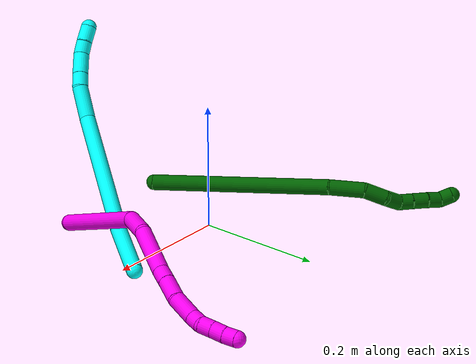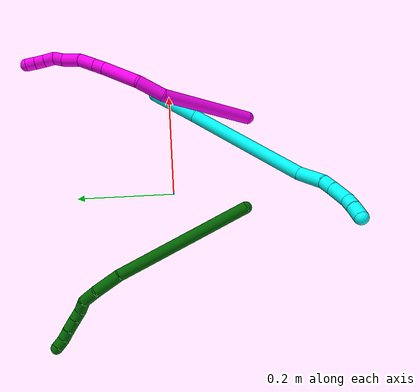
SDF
<sdf version="1.7">
 <world name="default">
  <model name="photoneo_s_sensor">
   <static>1</static>
   <pose>0 0 2 1.57079 1.57079 3.14159</pose>
   <link name="link">
    <inertial><mass>0.1</mass></inertial>
    <sensor name="sensor" type="depth">
     <update_rate>30</update_rate>
     <camera>
      <horizontal_fov>1.22</horizontal_fov>
      <image><width>1920</width><height>1200</height><format>B8G8R8</format></image>
      <clip><near>0.1</near><far>4</far></clip>
      <depth_camera><output>points</output></depth_camera>
     </camera>
     <plugin name="camera_plugin" filename="libgazebo_ros_depth_camera.so">
      <baseline>0.2</baseline>
      <alwaysOn>1</alwaysOn>
      <updateRate>0.0</updateRate>
      <cameraName>camera_ir</cameraName>
      <imageTopicName>/camera/color/image_raw</imageTopicName>
      <cameraInfoTopicName>/camera/color/camera_info</cameraInfoTopicName>
      <depthImageTopicName>/camera/depth/image_raw</depthImageTopicName>
      <depthImageCameraInfoTopicName>/camera/depth/camera_info</depthImageCameraInfoTopicName>
      <pointCloudTopicName>/camera/depth/points</pointCloudTopicName>
      <frameName>fr_optical</frameName>
      <pointCloudCutoff>0.1</pointCloudCutoff>
      <pointCloudCutoffMax>2.0</pointCloudCutoffMax>
      <distortionK1>0</distortionK1>
      <distortionK2>0</distortionK2>
      <distortionK3>0</distortionK3>
      <distortionT1>0</distortionT1>
      <distortionT2>0</distortionT2>
      <CxPrime>0</CxPrime>
      <Cx>0</Cx>
      <Cy>0</Cy>
      <focalLength>0</focalLength>
      <hackBaseline>0</hackBaseline>
     </plugin>
    </sensor>
   </link>
  </model>
  <model name="bin">
   <static>1</static>
   <link name="bottom">
    <collision name="collision-bottom">
     <pose>0 0 -0.01 0 -0 0</pose>
     <geometry><box><size>0.8 0.6 0.02</size></box></geometry>
     <surface>
      <friction><ode><mu>100</mu><mu2>100</mu2></ode></friction>
      <contact><collide_bitmask>65535</collide_bitmask></contact>
     </surface>
    </collision>
   </link>
   <link name="west_wall">
    <collision name="collision-west_wall">
     <pose>-0.41 0 0.1 0 -0 0</pose>
     <geometry><box><size>0.02 0.6 0.2</size></box></geometry>
     <surface>
      <friction><ode><mu>100</mu><mu2>100</mu2></ode></friction>
      <contact><collide_bitmask>65535</collide_bitmask></contact>
     </surface>
    </collision>
   </link>
   <link name="east_wall">
    <collision name="collision-east_wall">
     <pose>0.41 0 0.1 0 -0 0</pose>
     <geometry><box><size>0.02 0.6 0.2</size></box></geometry>
     <surface>
      <friction><ode><mu>100</mu><mu2>100</mu2></ode></friction>
      <contact><collide_bitmask>65535</collide_bitmask></contact>
     </surface>
    </collision>
   </link>
   <link name="south_wall">
    <collision name="collision-south_wall">
     <pose>0 -0.31 0.1 0 -0 0</pose>
     <geometry><box><size>0.8 0.02 0.2</size></box></geometry>
     <surface>
      <friction><ode><mu>100</mu><mu2>100</mu2></ode></friction>
      <contact><collide_bitmask>65535</collide_bitmask></contact>
     </surface>
    </collision>
   </link>
   <link name="north_wall">
    <collision name="collision-north_wall">
     <pose>0 0.31 0.1 0 -0 0</pose>
     <geometry><box><size>0.8 0.02 0.2</size></box></geometry>
     <surface>
      <friction><ode><mu>100</mu><mu2>100</mu2></ode></friction>
      <contact><collide_bitmask>65535</collide_bitmask></contact>
     </surface>
    </collision>
   </link>
  </model>
  <model name="3">
   <static>0</static>
   <link name="3">
    <collision name="collision-cylinder-e_1_1_4">
     <pose>-0.004735 -0.011561 0.046551 0.24342 -0.098401 -0.012045</pose>
     <geometry><cylinder><radius>0.0125</radius><length>0.096397</length></cylinder></geometry>
     <surface>
      <friction><ode><mu>1.16</mu><mu2>1.16</mu2><slip1>0</slip1><slip2>0</slip2></ode></friction>
      <contact><ode><kp>1e+06</kp><kd>1</kd><max_vel>0</max_vel><min_depth>0.001</min_depth></ode></contact>
     </surface>
    </collision>
    <visual name="visual-cylinder-e_1_1_4">
     <pose>-0.004735 -0.011561 0.046551 0.24342 -0.098401 -0.012045</pose>
     <geometry><cylinder><radius>0.0125</radius><length>0.096397</length></cylinder></geometry>
     <material><ambient>0.003922 1 0.996078 1</ambient></material>
    </visual>
    <collision name="collision-cylinder-e_2_4_5">
     <pose>-0.025129 -0.06675 0.204724 0.372602 -0.129925 -0.024522</pose>
     <geometry><cylinder><radius>0.0125</radius><length>0.241728</length></cylinder></geometry>
     <surface>
      <friction><ode><mu>1.16</mu><mu2>1.16</mu2><slip1>0</slip1><slip2>0</slip2></ode></friction>
      <contact><ode><kp>1e+06</kp><kd>1</kd><max_vel>0</max_vel><min_depth>0.001</min_depth></ode></contact>
     </surface>
    </collision>
    <visual name="visual-cylinder-e_2_4_5">
     <pose>-0.025129 -0.06675 0.204724 0.372602 -0.129925 -0.024522</pose>
     <geometry><cylinder><radius>0.0125</radius><length>0.241728</length></cylinder></geometry>
     <material><ambient>0.003922 1 0.996078 1</ambient></material>
    </visual>
    <collision name="collision-cylinder-e_3_5_6">
     <pose>-0.05142 -0.128185 0.33472 0.769722 -0.393794 -0.161254</pose>
     <geometry><cylinder><radius>0.0125</radius><length>0.055415</length></cylinder></geometry>
     <surface>
      <friction><ode><mu>1.16</mu><mu2>1.16</mu2><slip1>0</slip1><slip2>0</slip2></ode></friction>
      <contact><ode><kp>1e+06</kp><kd>1</kd><max_vel>0</max_vel><min_depth>0.001</min_depth></ode></contact>
     </surface>
    </collision>
    <visual name="visual-cylinder-e_3_5_6">
     <pose>-0.05142 -0.128185 0.33472 0.769722 -0.393794 -0.161254</pose>
     <geometry><cylinder><radius>0.0125</radius><length>0.055415</length></cylinder></geometry>
     <material><ambient>0.003922 1 0.996078 1</ambient></material>
    </visual>
    <collision name="collision-cylinder-e_4_6_7">
     <pose>-0.063562 -0.15397 0.36103 0.788103 -0.133509 -0.055581</pose>
     <geometry><cylinder><radius>0.0125</radius><length>0.022708</length></cylinder></geometry>
     <surface>
      <friction><ode><mu>1.16</mu><mu2>1.16</mu2><slip1>0</slip1><slip2>0</slip2></ode></friction>
      <contact><ode><kp>1e+06</kp><kd>1</kd><max_vel>0</max_vel><min_depth>0.001</min_depth></ode></contact>
     </surface>
    </collision>
    <visual name="visual-cylinder-e_4_6_7">
     <pose>-0.063562 -0.15397 0.36103 0.788103 -0.133509 -0.055581</pose>
     <geometry><cylinder><radius>0.0125</radius><length>0.022708</length></cylinder></geometry>
     <material><ambient>0.003922 1 0.996078 1</ambient></material>
    </visual>
    <collision name="collision-cylinder-e_5_7_8">
     <pose>-0.066906 -0.174847 0.381617 0.795002 -0.10105 -0.042456</pose>
     <geometry><cylinder><radius>0.0125</radius><length>0.03632</length></cylinder></geometry>
     <surface>
      <friction><ode><mu>1.16</mu><mu2>1.16</mu2><slip1>0</slip1><slip2>0</slip2></ode></friction>
      <contact><ode><kp>1e+06</kp><kd>1</kd><max_vel>0</max_vel><min_depth>0.001</min_depth></ode></contact>
     </surface>
    </collision>
    <visual name="visual-cylinder-e_5_7_8">
     <pose>-0.066906 -0.174847 0.381617 0.795002 -0.10105 -0.042456</pose>
     <geometry><cylinder><radius>0.0125</radius><length>0.03632</length></cylinder></geometry>
     <material><ambient>0.003922 1 0.996078 1</ambient></material>
    </visual>
    <collision name="collision-cylinder-e_6_8_9">
     <pose>-0.069362 -0.19714 0.399209 1.08679 -0.058777 -0.035511</pose>
     <geometry><cylinder><radius>0.0125</radius><length>0.021266</length></cylinder></geometry>
     <surface>
      <friction><ode><mu>1.16</mu><mu2>1.16</mu2><slip1>0</slip1><slip2>0</slip2></ode></friction>
      <contact><ode><kp>1e+06</kp><kd>1</kd><max_vel>0</max_vel><min_depth>0.001</min_depth></ode></contact>
     </surface>
    </collision>
    <visual name="visual-cylinder-e_6_8_9">
     <pose>-0.069362 -0.19714 0.399209 1.08679 -0.058777 -0.035511</pose>
     <geometry><cylinder><radius>0.0125</radius><length>0.021266</length></cylinder></geometry>
     <material><ambient>0.003922 1 0.996078 1</ambient></material>
    </visual>
    <collision name="collision-cylinder-e_7_9_2">
     <pose>-0.069726 -0.217957 0.410523 1.06174 0.019898 0.011682</pose>
     <geometry><cylinder><radius>0.0125</radius><length>0.026166</length></cylinder></geometry>
     <surface>
      <friction><ode><mu>1.16</mu><mu2>1.16</mu2><slip1>0</slip1><slip2>0</slip2></ode></friction>
      <contact><ode><kp>1e+06</kp><kd>1</kd><max_vel>0</max_vel><min_depth>0.001</min_depth></ode></contact>
     </surface>
    </collision>
    <visual name="visual-cylinder-e_7_9_2">
     <pose>-0.069726 -0.217957 0.410523 1.06174 0.019898 0.011682</pose>
     <geometry><cylinder><radius>0.0125</radius><length>0.026166</length></cylinder></geometry>
     <material><ambient>0.003922 1 0.996078 1</ambient></material>
    </visual>
    <collision name="collision-sphere-2">
     <pose>-0.069466 -0.229379 0.416898 0 -0 0</pose>
     <geometry><sphere><radius>0.0125</radius></sphere></geometry>
     <surface>
      <friction><ode><mu>1.16</mu><mu2>1.16</mu2><slip1>0</slip1><slip2>0</slip2></ode></friction>
      <contact><ode><kp>1e+06</kp><kd>1</kd><max_vel>0</max_vel><min_depth>0.001</min_depth></ode></contact>
     </surface>
    </collision>
    <visual name="visual-sphere-2">
     <pose>-0.069466 -0.229379 0.416898 0 -0 0</pose>
     <geometry><sphere><radius>0.0125</radius></sphere></geometry>
     <material><ambient>0.003922 1 0.996078 1</ambient></material>
    </visual>
    <collision name="collision-sphere-9">
     <pose>-0.069987 -0.206535 0.404148 0 -0 0</pose>
     <geometry><sphere><radius>0.0125</radius></sphere></geometry>
     <surface>
      <friction><ode><mu>1.16</mu><mu2>1.16</mu2><slip1>0</slip1><slip2>0</slip2></ode></friction>
      <contact><ode><kp>1e+06</kp><kd>1</kd><max_vel>0</max_vel><min_depth>0.001</min_depth></ode></contact>
     </surface>
    </collision>
    <visual name="visual-sphere-9">
     <pose>-0.069987 -0.206535 0.404148 0 -0 0</pose>
     <geometry><sphere><radius>0.0125</radius></sphere></geometry>
     <material><ambient>0.003922 1 0.996078 1</ambient></material>
    </visual>
    <collision name="collision-sphere-4">
     <pose>-0.00947 -0.023121 0.093102 0 -0 0</pose>
     <geometry><sphere><radius>0.0125</radius></sphere></geometry>
     <surface>
      <friction><ode><mu>1.16</mu><mu2>1.16</mu2><slip1>0</slip1><slip2>0</slip2></ode></friction>
      <contact><ode><kp>1e+06</kp><kd>1</kd><max_vel>0</max_vel><min_depth>0.001</min_depth></ode></contact>
     </surface>
    </collision>
    <visual name="visual-sphere-4">
     <pose>-0.00947 -0.023121 0.093102 0 -0 0</pose>
     <geometry><sphere><radius>0.0125</radius></sphere></geometry>
     <material><ambient>0.003922 1 0.996078 1</ambient></material>
    </visual>
    <collision name="collision-sphere-1">
     <geometry><sphere><radius>0.0125</radius></sphere></geometry>
     <surface>
      <friction><ode><mu>1.16</mu><mu2>1.16</mu2><slip1>0</slip1><slip2>0</slip2></ode></friction>
      <contact><ode><kp>1e+06</kp><kd>1</kd><max_vel>0</max_vel><min_depth>0.001</min_depth></ode></contact>
     </surface>
    </collision>
    <visual name="visual-sphere-1">
     <geometry><sphere><radius>0.0125</radius></sphere></geometry>
     <material><ambient>0.003922 1 0.996078 1</ambient></material>
    </visual>
    <collision name="collision-sphere-8">
     <pose>-0.068737 -0.187744 0.39427 0 -0 0</pose>
     <geometry><sphere><radius>0.0125</radius></sphere></geometry>
     <surface>
      <friction><ode><mu>1.16</mu><mu2>1.16</mu2><slip1>0</slip1><slip2>0</slip2></ode></friction>
      <contact><ode><kp>1e+06</kp><kd>1</kd><max_vel>0</max_vel><min_depth>0.001</min_depth></ode></contact>
     </surface>
    </collision>
    <visual name="visual-sphere-8">
     <pose>-0.068737 -0.187744 0.39427 0 -0 0</pose>
     <geometry><sphere><radius>0.0125</radius></sphere></geometry>
     <material><ambient>0.003922 1 0.996078 1</ambient></material>
    </visual>
    <collision name="collision-sphere-5">
     <pose>-0.040788 -0.110378 0.316346 0 -0 0</pose>
     <geometry><sphere><radius>0.0125</radius></sphere></geometry>
     <surface>
      <friction><ode><mu>1.16</mu><mu2>1.16</mu2><slip1>0</slip1><slip2>0</slip2></ode></friction>
      <contact><ode><kp>1e+06</kp><kd>1</kd><max_vel>0</max_vel><min_depth>0.001</min_depth></ode></contact>
     </surface>
    </collision>
    <visual name="visual-sphere-5">
     <pose>-0.040788 -0.110378 0.316346 0 -0 0</pose>
     <geometry><sphere><radius>0.0125</radius></sphere></geometry>
     <material><ambient>0.003922 1 0.996078 1</ambient></material>
    </visual>
    <collision name="collision-sphere-6">
     <pose>-0.062051 -0.145992 0.353094 0 -0 0</pose>
     <geometry><sphere><radius>0.0125</radius></sphere></geometry>
     <surface>
      <friction><ode><mu>1.16</mu><mu2>1.16</mu2><slip1>0</slip1><slip2>0</slip2></ode></friction>
      <contact><ode><kp>1e+06</kp><kd>1</kd><max_vel>0</max_vel><min_depth>0.001</min_depth></ode></contact>
     </surface>
    </collision>
    <visual name="visual-sphere-6">
     <pose>-0.062051 -0.145992 0.353094 0 -0 0</pose>
     <geometry><sphere><radius>0.0125</radius></sphere></geometry>
     <material><ambient>0.003922 1 0.996078 1</ambient></material>
    </visual>
    <collision name="collision-sphere-7">
     <pose>-0.065074 -0.161949 0.368965 0 -0 0</pose>
     <geometry><sphere><radius>0.0125</radius></sphere></geometry>
     <surface>
      <friction><ode><mu>1.16</mu><mu2>1.16</mu2><slip1>0</slip1><slip2>0</slip2></ode></friction>
      <contact><ode><kp>1e+06</kp><kd>1</kd><max_vel>0</max_vel><min_depth>0.001</min_depth></ode></contact>
     </surface>
    </collision>
    <visual name="visual-sphere-7">
     <pose>-0.065074 -0.161949 0.368965 0 -0 0</pose>
     <geometry><sphere><radius>0.0125</radius></sphere></geometry>
     <material><ambient>0.003922 1 0.996078 1</ambient></material>
    </visual>
    <inertial>
     <pose>-0.033107 -0.088191 0.227627 0 -0 0</pose>
     <mass>0.5</mass>
     <inertia>
      <ixx>0.001242</ixx>
      <ixy>0</ixy>
      <ixz>0</ixz>
      <iyy>0.001151</iyy>
      <iyz>0</iyz>
      <izz>0.000668</izz>
     </inertia>
    </inertial>
   </link>
   <pose>0.205526 0.028291 0.011497 -1.57415 0.512865 2.58901</pose>
  </model>
  <model name="6">
   <static>0</static>
   <link name="6">
    <collision name="collision-cylinder-e_1_1_4">
     <pose>-0.049587 0.117078 -0.069757 -2.10813 -0.34896 0.601604</pose>
     <geometry><cylinder><radius>0.0125</radius><length>0.29005</length></cylinder></geometry>
     <surface>
      <friction><ode><mu>1.16</mu><mu2>1.16</mu2><slip1>0</slip1><slip2>0</slip2></ode></friction>
      <contact><ode><kp>1e+06</kp><kd>1</kd><max_vel>0</max_vel><min_depth>0.001</min_depth></ode></contact>
     </surface>
    </collision>
    <visual name="visual-cylinder-e_1_1_4">
     <pose>-0.049587 0.117078 -0.069757 -2.10813 -0.34896 0.601604</pose>
     <geometry><cylinder><radius>0.0125</radius><length>0.29005</length></cylinder></geometry>
     <material><ambient>0 0.392157 0.003922 1</ambient></material>
    </visual>
    <collision name="collision-cylinder-e_2_4_5">
     <pose>-0.111762 0.257463 -0.148977 -1.95646 -0.464013 0.674972</pose>
     <geometry><cylinder><radius>0.0125</radius><length>0.056257</length></cylinder></geometry>
     <surface>
      <friction><ode><mu>1.16</mu><mu2>1.16</mu2><slip1>0</slip1><slip2>0</slip2></ode></friction>
      <contact><ode><kp>1e+06</kp><kd>1</kd><max_vel>0</max_vel><min_depth>0.001</min_depth></ode></contact>
     </surface>
    </collision>
    <visual name="visual-cylinder-e_2_4_5">
     <pose>-0.111762 0.257463 -0.148977 -1.95646 -0.464013 0.674972</pose>
     <geometry><cylinder><radius>0.0125</radius><length>0.056257</length></cylinder></geometry>
     <material><ambient>0 0.392157 0.003922 1</ambient></material>
    </visual>
    <collision name="collision-cylinder-e_3_5_6">
     <pose>-0.137084 0.293309 -0.161604 -1.81807 -0.777619 0.96835</pose>
     <geometry><cylinder><radius>0.0125</radius><length>0.036298</length></cylinder></geometry>
     <surface>
      <friction><ode><mu>1.16</mu><mu2>1.16</mu2><slip1>0</slip1><slip2>0</slip2></ode></friction>
      <contact><ode><kp>1e+06</kp><kd>1</kd><max_vel>0</max_vel><min_depth>0.001</min_depth></ode></contact>
     </surface>
    </collision>
    <visual name="visual-cylinder-e_3_5_6">
     <pose>-0.137084 0.293309 -0.161604 -1.81807 -0.777619 0.96835</pose>
     <geometry><cylinder><radius>0.0125</radius><length>0.036298</length></cylinder></geometry>
     <material><ambient>0 0.392157 0.003922 1</ambient></material>
    </visual>
    <collision name="collision-cylinder-e_4_6_7">
     <pose>-0.158762 0.314757 -0.161436 -1.21268 -0.754656 0.536438</pose>
     <geometry><cylinder><radius>0.0125</radius><length>0.026116</length></cylinder></geometry>
     <surface>
      <friction><ode><mu>1.16</mu><mu2>1.16</mu2><slip1>0</slip1><slip2>0</slip2></ode></friction>
      <contact><ode><kp>1e+06</kp><kd>1</kd><max_vel>0</max_vel><min_depth>0.001</min_depth></ode></contact>
     </surface>
    </collision>
    <visual name="visual-cylinder-e_4_6_7">
     <pose>-0.158762 0.314757 -0.161436 -1.21268 -0.754656 0.536438</pose>
     <geometry><cylinder><radius>0.0125</radius><length>0.026116</length></cylinder></geometry>
     <material><ambient>0 0.392157 0.003922 1</ambient></material>
    </visual>
    <collision name="collision-cylinder-e_5_7_8">
     <pose>-0.17186 0.333601 -0.157647 -1.52511 -0.395513 0.378272</pose>
     <geometry><cylinder><radius>0.0125</radius><length>0.021553</length></cylinder></geometry>
     <surface>
      <friction><ode><mu>1.16</mu><mu2>1.16</mu2><slip1>0</slip1><slip2>0</slip2></ode></friction>
      <contact><ode><kp>1e+06</kp><kd>1</kd><max_vel>0</max_vel><min_depth>0.001</min_depth></ode></contact>
     </surface>
    </collision>
    <visual name="visual-cylinder-e_5_7_8">
     <pose>-0.17186 0.333601 -0.157647 -1.52511 -0.395513 0.378272</pose>
     <geometry><cylinder><radius>0.0125</radius><length>0.021553</length></cylinder></geometry>
     <material><ambient>0 0.392157 0.003922 1</ambient></material>
    </visual>
    <collision name="collision-cylinder-e_6_8_9">
     <pose>-0.18105 0.355277 -0.156438 -1.5066 -0.404617 0.380064</pose>
     <geometry><cylinder><radius>0.0125</radius><length>0.025599</length></cylinder></geometry>
     <surface>
      <friction><ode><mu>1.16</mu><mu2>1.16</mu2><slip1>0</slip1><slip2>0</slip2></ode></friction>
      <contact><ode><kp>1e+06</kp><kd>1</kd><max_vel>0</max_vel><min_depth>0.001</min_depth></ode></contact>
     </surface>
    </collision>
    <visual name="visual-cylinder-e_6_8_9">
     <pose>-0.18105 0.355277 -0.156438 -1.5066 -0.404617 0.380064</pose>
     <geometry><cylinder><radius>0.0125</radius><length>0.025599</length></cylinder></geometry>
     <material><ambient>0 0.392157 0.003922 1</ambient></material>
    </visual>
    <collision name="collision-cylinder-e_7_9_10">
     <pose>-0.19116 0.377475 -0.154355 -1.44445 -0.448369 0.396495</pose>
     <geometry><cylinder><radius>0.0125</radius><length>0.023393</length></cylinder></geometry>
     <surface>
      <friction><ode><mu>1.16</mu><mu2>1.16</mu2><slip1>0</slip1><slip2>0</slip2></ode></friction>
      <contact><ode><kp>1e+06</kp><kd>1</kd><max_vel>0</max_vel><min_depth>0.001</min_depth></ode></contact>
     </surface>
    </collision>
    <visual name="visual-cylinder-e_7_9_10">
     <pose>-0.19116 0.377475 -0.154355 -1.44445 -0.448369 0.396495</pose>
     <geometry><cylinder><radius>0.0125</radius><length>0.023393</length></cylinder></geometry>
     <material><ambient>0 0.392157 0.003922 1</ambient></material>
    </visual>
    <collision name="collision-cylinder-e_8_10_2">
     <pose>-0.196691 0.398164 -0.154626 -1.72578 -0.044439 0.051918</pose>
     <geometry><cylinder><radius>0.0125</radius><length>0.020734</length></cylinder></geometry>
     <surface>
      <friction><ode><mu>1.16</mu><mu2>1.16</mu2><slip1>0</slip1><slip2>0</slip2></ode></friction>
      <contact><ode><kp>1e+06</kp><kd>1</kd><max_vel>0</max_vel><min_depth>0.001</min_depth></ode></contact>
     </surface>
    </collision>
    <visual name="visual-cylinder-e_8_10_2">
     <pose>-0.196691 0.398164 -0.154626 -1.72578 -0.044439 0.051918</pose>
     <geometry><cylinder><radius>0.0125</radius><length>0.020734</length></cylinder></geometry>
     <material><ambient>0 0.392157 0.003922 1</ambient></material>
    </visual>
    <collision name="collision-sphere-2">
     <pose>-0.197151 0.408397 -0.156224 0 -0 0</pose>
     <geometry><sphere><radius>0.0125</radius></sphere></geometry>
     <surface>
      <friction><ode><mu>1.16</mu><mu2>1.16</mu2><slip1>0</slip1><slip2>0</slip2></ode></friction>
      <contact><ode><kp>1e+06</kp><kd>1</kd><max_vel>0</max_vel><min_depth>0.001</min_depth></ode></contact>
     </surface>
    </collision>
    <visual name="visual-sphere-2">
     <pose>-0.197151 0.408397 -0.156224 0 -0 0</pose>
     <geometry><sphere><radius>0.0125</radius></sphere></geometry>
     <material><ambient>0 0.392157 0.003922 1</ambient></material>
    </visual>
    <collision name="collision-sphere-10">
     <pose>-0.19623 0.387932 -0.153027 0 -0 0</pose>
     <geometry><sphere><radius>0.0125</radius></sphere></geometry>
     <surface>
      <friction><ode><mu>1.16</mu><mu2>1.16</mu2><slip1>0</slip1><slip2>0</slip2></ode></friction>
      <contact><ode><kp>1e+06</kp><kd>1</kd><max_vel>0</max_vel><min_depth>0.001</min_depth></ode></contact>
     </surface>
    </collision>
    <visual name="visual-sphere-10">
     <pose>-0.19623 0.387932 -0.153027 0 -0 0</pose>
     <geometry><sphere><radius>0.0125</radius></sphere></geometry>
     <material><ambient>0 0.392157 0.003922 1</ambient></material>
    </visual>
    <collision name="collision-sphere-9">
     <pose>-0.186089 0.367019 -0.155683 0 -0 0</pose>
     <geometry><sphere><radius>0.0125</radius></sphere></geometry>
     <surface>
      <friction><ode><mu>1.16</mu><mu2>1.16</mu2><slip1>0</slip1><slip2>0</slip2></ode></friction>
      <contact><ode><kp>1e+06</kp><kd>1</kd><max_vel>0</max_vel><min_depth>0.001</min_depth></ode></contact>
     </surface>
    </collision>
    <visual name="visual-sphere-9">
     <pose>-0.186089 0.367019 -0.155683 0 -0 0</pose>
     <geometry><sphere><radius>0.0125</radius></sphere></geometry>
     <material><ambient>0 0.392157 0.003922 1</ambient></material>
    </visual>
    <collision name="collision-sphere-4">
     <pose>-0.099174 0.234156 -0.139514 0 -0 0</pose>
     <geometry><sphere><radius>0.0125</radius></sphere></geometry>
     <surface>
      <friction><ode><mu>1.16</mu><mu2>1.16</mu2><slip1>0</slip1><slip2>0</slip2></ode></friction>
      <contact><ode><kp>1e+06</kp><kd>1</kd><max_vel>0</max_vel><min_depth>0.001</min_depth></ode></contact>
     </surface>
    </collision>
    <visual name="visual-sphere-4">
     <pose>-0.099174 0.234156 -0.139514 0 -0 0</pose>
     <geometry><sphere><radius>0.0125</radius></sphere></geometry>
     <material><ambient>0 0.392157 0.003922 1</ambient></material>
    </visual>
    <collision name="collision-sphere-1">
     <geometry><sphere><radius>0.0125</radius></sphere></geometry>
     <surface>
      <friction><ode><mu>1.16</mu><mu2>1.16</mu2><slip1>0</slip1><slip2>0</slip2></ode></friction>
      <contact><ode><kp>1e+06</kp><kd>1</kd><max_vel>0</max_vel><min_depth>0.001</min_depth></ode></contact>
     </surface>
    </collision>
    <visual name="visual-sphere-1">
     <geometry><sphere><radius>0.0125</radius></sphere></geometry>
     <material><ambient>0 0.392157 0.003922 1</ambient></material>
    </visual>
    <collision name="collision-sphere-8">
     <pose>-0.176012 0.343535 -0.157193 0 -0 0</pose>
     <geometry><sphere><radius>0.0125</radius></sphere></geometry>
     <surface>
      <friction><ode><mu>1.16</mu><mu2>1.16</mu2><slip1>0</slip1><slip2>0</slip2></ode></friction>
      <contact><ode><kp>1e+06</kp><kd>1</kd><max_vel>0</max_vel><min_depth>0.001</min_depth></ode></contact>
     </surface>
    </collision>
    <visual name="visual-sphere-8">
     <pose>-0.176012 0.343535 -0.157193 0 -0 0</pose>
     <geometry><sphere><radius>0.0125</radius></sphere></geometry>
     <material><ambient>0 0.392157 0.003922 1</ambient></material>
    </visual>
    <collision name="collision-sphere-5">
     <pose>-0.124351 0.280769 -0.158439 0 -0 0</pose>
     <geometry><sphere><radius>0.0125</radius></sphere></geometry>
     <surface>
      <friction><ode><mu>1.16</mu><mu2>1.16</mu2><slip1>0</slip1><slip2>0</slip2></ode></friction>
      <contact><ode><kp>1e+06</kp><kd>1</kd><max_vel>0</max_vel><min_depth>0.001</min_depth></ode></contact>
     </surface>
    </collision>
    <visual name="visual-sphere-5">
     <pose>-0.124351 0.280769 -0.158439 0 -0 0</pose>
     <geometry><sphere><radius>0.0125</radius></sphere></geometry>
     <material><ambient>0 0.392157 0.003922 1</ambient></material>
    </visual>
    <collision name="collision-sphere-6">
     <pose>-0.149817 0.305848 -0.16477 0 -0 0</pose>
     <geometry><sphere><radius>0.0125</radius></sphere></geometry>
     <surface>
      <friction><ode><mu>1.16</mu><mu2>1.16</mu2><slip1>0</slip1><slip2>0</slip2></ode></friction>
      <contact><ode><kp>1e+06</kp><kd>1</kd><max_vel>0</max_vel><min_depth>0.001</min_depth></ode></contact>
     </surface>
    </collision>
    <visual name="visual-sphere-6">
     <pose>-0.149817 0.305848 -0.16477 0 -0 0</pose>
     <geometry><sphere><radius>0.0125</radius></sphere></geometry>
     <material><ambient>0 0.392157 0.003922 1</ambient></material>
    </visual>
    <collision name="collision-sphere-7">
     <pose>-0.167708 0.323667 -0.158101 0 -0 0</pose>
     <geometry><sphere><radius>0.0125</radius></sphere></geometry>
     <surface>
      <friction><ode><mu>1.16</mu><mu2>1.16</mu2><slip1>0</slip1><slip2>0</slip2></ode></friction>
      <contact><ode><kp>1e+06</kp><kd>1</kd><max_vel>0</max_vel><min_depth>0.001</min_depth></ode></contact>
     </surface>
    </collision>
    <visual name="visual-sphere-7">
     <pose>-0.167708 0.323667 -0.158101 0 -0 0</pose>
     <geometry><sphere><radius>0.0125</radius></sphere></geometry>
     <material><ambient>0 0.392157 0.003922 1</ambient></material>
    </visual>
    <inertial>
     <pose>-0.093362 0.20136 -0.105831 0 -0 0</pose>
     <mass>0.5</mass>
     <inertia>
      <ixx>0.002694</ixx>
      <ixy>0</ixy>
      <ixz>0</ixz>
      <iyy>0.000617</iyy>
      <iyz>0</iyz>
      <izz>-0.000975</izz>
     </inertia>
    </inertial>
   </link>
   <pose>-0.034858 -0.144346 0.020479 2.18752 -1.13824 -1.21147</pose>
  </model>
  <model name="10">
   <static>0</static>
   <link name="10">
    <collision name="collision-cylinder-e_1_1_4">
     <pose>-0.077342 0.041742 -0.032962 -2.2392 -0.968379 1.65272</pose>
     <geometry><cylinder><radius>0.0125</radius><length>0.18773</length></cylinder></geometry>
     <surface>
      <friction><ode><mu>1.16</mu><mu2>1.16</mu2><slip1>0</slip1><slip2>0</slip2></ode></friction>
      <contact><ode><kp>1e+06</kp><kd>1</kd><max_vel>0</max_vel><min_depth>0.001</min_depth></ode></contact>
     </surface>
    </collision>
    <visual name="visual-cylinder-e_1_1_4">
     <pose>-0.077342 0.041742 -0.032962 -2.2392 -0.968379 1.65272</pose>
     <geometry><cylinder><radius>0.0125</radius><length>0.18773</length></cylinder></geometry>
     <material><ambient>1 0 0.964706 1</ambient></material>
    </visual>
    <collision name="collision-cylinder-e_2_4_5">
     <pose>-0.16957 0.09755 -0.084044 -2.48152 -0.575656 1.42537</pose>
     <geometry><cylinder><radius>0.0125</radius><length>0.054691</length></cylinder></geometry>
     <surface>
      <friction><ode><mu>1.16</mu><mu2>1.16</mu2><slip1>0</slip1><slip2>0</slip2></ode></friction>
      <contact><ode><kp>1e+06</kp><kd>1</kd><max_vel>0</max_vel><min_depth>0.001</min_depth></ode></contact>
     </surface>
    </collision>
    <visual name="visual-cylinder-e_2_4_5">
     <pose>-0.16957 0.09755 -0.084044 -2.48152 -0.575656 1.42537</pose>
     <geometry><cylinder><radius>0.0125</radius><length>0.054691</length></cylinder></geometry>
     <material><ambient>1 0 0.964706 1</ambient></material>
    </visual>
    <collision name="collision-cylinder-e_3_5_6">
     <pose>-0.197658 0.120884 -0.138811 -2.89385 -0.335978 1.87498</pose>
     <geometry><cylinder><radius>0.0125</radius><length>0.080079</length></cylinder></geometry>
     <surface>
      <friction><ode><mu>1.16</mu><mu2>1.16</mu2><slip1>0</slip1><slip2>0</slip2></ode></friction>
      <contact><ode><kp>1e+06</kp><kd>1</kd><max_vel>0</max_vel><min_depth>0.001</min_depth></ode></contact>
     </surface>
    </collision>
    <visual name="visual-cylinder-e_3_5_6">
     <pose>-0.197658 0.120884 -0.138811 -2.89385 -0.335978 1.87498</pose>
     <geometry><cylinder><radius>0.0125</radius><length>0.080079</length></cylinder></geometry>
     <material><ambient>1 0 0.964706 1</ambient></material>
    </visual>
    <collision name="collision-cylinder-e_4_6_7">
     <pose>-0.215298 0.132725 -0.185166 -2.88268 -0.416212 2.03664</pose>
     <geometry><cylinder><radius>0.0125</radius><length>0.02196</length></cylinder></geometry>
     <surface>
      <friction><ode><mu>1.16</mu><mu2>1.16</mu2><slip1>0</slip1><slip2>0</slip2></ode></friction>
      <contact><ode><kp>1e+06</kp><kd>1</kd><max_vel>0</max_vel><min_depth>0.001</min_depth></ode></contact>
     </surface>
    </collision>
    <visual name="visual-cylinder-e_4_6_7">
     <pose>-0.215298 0.132725 -0.185166 -2.88268 -0.416212 2.03664</pose>
     <geometry><cylinder><radius>0.0125</radius><length>0.02196</length></cylinder></geometry>
     <material><ambient>1 0 0.964706 1</ambient></material>
    </visual>
    <collision name="collision-cylinder-e_5_7_8">
     <pose>-0.226483 0.13929 -0.210973 -2.89841 -0.386263 2.02467</pose>
     <geometry><cylinder><radius>0.0125</radius><length>0.035813</length></cylinder></geometry>
     <surface>
      <friction><ode><mu>1.16</mu><mu2>1.16</mu2><slip1>0</slip1><slip2>0</slip2></ode></friction>
      <contact><ode><kp>1e+06</kp><kd>1</kd><max_vel>0</max_vel><min_depth>0.001</min_depth></ode></contact>
     </surface>
    </collision>
    <visual name="visual-cylinder-e_5_7_8">
     <pose>-0.226483 0.13929 -0.210973 -2.89841 -0.386263 2.02467</pose>
     <geometry><cylinder><radius>0.0125</radius><length>0.035813</length></cylinder></geometry>
     <material><ambient>1 0 0.964706 1</ambient></material>
    </visual>
    <collision name="collision-cylinder-e_6_8_9">
     <pose>-0.243217 0.142986 -0.244086 3.12406 -0.53079 -3.07712</pose>
     <geometry><cylinder><radius>0.0125</radius><length>0.039461</length></cylinder></geometry>
     <surface>
      <friction><ode><mu>1.16</mu><mu2>1.16</mu2><slip1>0</slip1><slip2>0</slip2></ode></friction>
      <contact><ode><kp>1e+06</kp><kd>1</kd><max_vel>0</max_vel><min_depth>0.001</min_depth></ode></contact>
     </surface>
    </collision>
    <visual name="visual-cylinder-e_6_8_9">
     <pose>-0.243217 0.142986 -0.244086 3.12406 -0.53079 -3.07712</pose>
     <geometry><cylinder><radius>0.0125</radius><length>0.039461</length></cylinder></geometry>
     <material><ambient>1 0 0.964706 1</ambient></material>
    </visual>
    <collision name="collision-cylinder-e_7_9_10">
     <pose>-0.25939 0.14474 -0.268823 -2.88194 -0.658606 2.41175</pose>
     <geometry><cylinder><radius>0.0125</radius><length>0.020212</length></cylinder></geometry>
     <surface>
      <friction><ode><mu>1.16</mu><mu2>1.16</mu2><slip1>0</slip1><slip2>0</slip2></ode></friction>
      <contact><ode><kp>1e+06</kp><kd>1</kd><max_vel>0</max_vel><min_depth>0.001</min_depth></ode></contact>
     </surface>
    </collision>
    <visual name="visual-cylinder-e_7_9_10">
     <pose>-0.25939 0.14474 -0.268823 -2.88194 -0.658606 2.41175</pose>
     <geometry><cylinder><radius>0.0125</radius><length>0.020212</length></cylinder></geometry>
     <material><ambient>1 0 0.964706 1</ambient></material>
    </visual>
    <collision name="collision-cylinder-e_8_10_11">
     <pose>-0.273352 0.145264 -0.282658 2.89663 -0.890087 -2.63643</pose>
     <geometry><cylinder><radius>0.0125</radius><length>0.020015</length></cylinder></geometry>
     <surface>
      <friction><ode><mu>1.16</mu><mu2>1.16</mu2><slip1>0</slip1><slip2>0</slip2></ode></friction>
      <contact><ode><kp>1e+06</kp><kd>1</kd><max_vel>0</max_vel><min_depth>0.001</min_depth></ode></contact>
     </surface>
    </collision>
    <visual name="visual-cylinder-e_8_10_11">
     <pose>-0.273352 0.145264 -0.282658 2.89663 -0.890087 -2.63643</pose>
     <geometry><cylinder><radius>0.0125</radius><length>0.020015</length></cylinder></geometry>
     <material><ambient>1 0 0.964706 1</ambient></material>
    </visual>
    <collision name="collision-cylinder-e_9_11_12">
     <pose>-0.288778 0.142334 -0.295079 2.9229 -0.869034 -2.67702</pose>
     <geometry><cylinder><radius>0.0125</radius><length>0.02003</length></cylinder></geometry>
     <surface>
      <friction><ode><mu>1.16</mu><mu2>1.16</mu2><slip1>0</slip1><slip2>0</slip2></ode></friction>
      <contact><ode><kp>1e+06</kp><kd>1</kd><max_vel>0</max_vel><min_depth>0.001</min_depth></ode></contact>
     </surface>
    </collision>
    <visual name="visual-cylinder-e_9_11_12">
     <pose>-0.288778 0.142334 -0.295079 2.9229 -0.869034 -2.67702</pose>
     <geometry><cylinder><radius>0.0125</radius><length>0.02003</length></cylinder></geometry>
     <material><ambient>1 0 0.964706 1</ambient></material>
    </visual>
    <collision name="collision-cylinder-e_10_12_2">
     <pose>-0.304679 0.140148 -0.30699 3.00255 -0.970123 -2.87888</pose>
     <geometry><cylinder><radius>0.0125</radius><length>0.020007</length></cylinder></geometry>
     <surface>
      <friction><ode><mu>1.16</mu><mu2>1.16</mu2><slip1>0</slip1><slip2>0</slip2></ode></friction>
      <contact><ode><kp>1e+06</kp><kd>1</kd><max_vel>0</max_vel><min_depth>0.001</min_depth></ode></contact>
     </surface>
    </collision>
    <visual name="visual-cylinder-e_10_12_2">
     <pose>-0.304679 0.140148 -0.30699 3.00255 -0.970123 -2.87888</pose>
     <geometry><cylinder><radius>0.0125</radius><length>0.020007</length></cylinder></geometry>
     <material><ambient>1 0 0.964706 1</ambient></material>
    </visual>
    <collision name="collision-sphere-2">
     <pose>-0.312931 0.139364 -0.31259 0 -0 0</pose>
     <geometry><sphere><radius>0.0125</radius></sphere></geometry>
     <surface>
      <friction><ode><mu>1.16</mu><mu2>1.16</mu2><slip1>0</slip1><slip2>0</slip2></ode></friction>
      <contact><ode><kp>1e+06</kp><kd>1</kd><max_vel>0</max_vel><min_depth>0.001</min_depth></ode></contact>
     </surface>
    </collision>
    <visual name="visual-sphere-2">
     <pose>-0.312931 0.139364 -0.31259 0 -0 0</pose>
     <geometry><sphere><radius>0.0125</radius></sphere></geometry>
     <material><ambient>1 0 0.964706 1</ambient></material>
    </visual>
    <collision name="collision-sphere-12">
     <pose>-0.296426 0.140931 -0.301391 0 -0 0</pose>
     <geometry><sphere><radius>0.0125</radius></sphere></geometry>
     <surface>
      <friction><ode><mu>1.16</mu><mu2>1.16</mu2><slip1>0</slip1><slip2>0</slip2></ode></friction>
      <contact><ode><kp>1e+06</kp><kd>1</kd><max_vel>0</max_vel><min_depth>0.001</min_depth></ode></contact>
     </surface>
    </collision>
    <visual name="visual-sphere-12">
     <pose>-0.296426 0.140931 -0.301391 0 -0 0</pose>
     <geometry><sphere><radius>0.0125</radius></sphere></geometry>
     <material><ambient>1 0 0.964706 1</ambient></material>
    </visual>
    <collision name="collision-sphere-11">
     <pose>-0.281129 0.143737 -0.288768 0 -0 0</pose>
     <geometry><sphere><radius>0.0125</radius></sphere></geometry>
     <surface>
      <friction><ode><mu>1.16</mu><mu2>1.16</mu2><slip1>0</slip1><slip2>0</slip2></ode></friction>
      <contact><ode><kp>1e+06</kp><kd>1</kd><max_vel>0</max_vel><min_depth>0.001</min_depth></ode></contact>
     </surface>
    </collision>
    <visual name="visual-sphere-11">
     <pose>-0.281129 0.143737 -0.288768 0 -0 0</pose>
     <geometry><sphere><radius>0.0125</radius></sphere></geometry>
     <material><ambient>1 0 0.964706 1</ambient></material>
    </visual>
    <collision name="collision-sphere-10">
     <pose>-0.265575 0.146792 -0.276547 0 -0 0</pose>
     <geometry><sphere><radius>0.0125</radius></sphere></geometry>
     <surface>
      <friction><ode><mu>1.16</mu><mu2>1.16</mu2><slip1>0</slip1><slip2>0</slip2></ode></friction>
      <contact><ode><kp>1e+06</kp><kd>1</kd><max_vel>0</max_vel><min_depth>0.001</min_depth></ode></contact>
     </surface>
    </collision>
    <visual name="visual-sphere-10">
     <pose>-0.265575 0.146792 -0.276547 0 -0 0</pose>
     <geometry><sphere><radius>0.0125</radius></sphere></geometry>
     <material><ambient>1 0 0.964706 1</ambient></material>
    </visual>
    <collision name="collision-sphere-9">
     <pose>-0.253204 0.142688 -0.261099 0 -0 0</pose>
     <geometry><sphere><radius>0.0125</radius></sphere></geometry>
     <surface>
      <friction><ode><mu>1.16</mu><mu2>1.16</mu2><slip1>0</slip1><slip2>0</slip2></ode></friction>
      <contact><ode><kp>1e+06</kp><kd>1</kd><max_vel>0</max_vel><min_depth>0.001</min_depth></ode></contact>
     </surface>
    </collision>
    <visual name="visual-sphere-9">
     <pose>-0.253204 0.142688 -0.261099 0 -0 0</pose>
     <geometry><sphere><radius>0.0125</radius></sphere></geometry>
     <material><ambient>1 0 0.964706 1</ambient></material>
    </visual>
    <collision name="collision-sphere-4">
     <pose>-0.154684 0.083484 -0.065924 0 -0 0</pose>
     <geometry><sphere><radius>0.0125</radius></sphere></geometry>
     <surface>
      <friction><ode><mu>1.16</mu><mu2>1.16</mu2><slip1>0</slip1><slip2>0</slip2></ode></friction>
      <contact><ode><kp>1e+06</kp><kd>1</kd><max_vel>0</max_vel><min_depth>0.001</min_depth></ode></contact>
     </surface>
    </collision>
    <visual name="visual-sphere-4">
     <pose>-0.154684 0.083484 -0.065924 0 -0 0</pose>
     <geometry><sphere><radius>0.0125</radius></sphere></geometry>
     <material><ambient>1 0 0.964706 1</ambient></material>
    </visual>
    <collision name="collision-sphere-1">
     <geometry><sphere><radius>0.0125</radius></sphere></geometry>
     <surface>
      <friction><ode><mu>1.16</mu><mu2>1.16</mu2><slip1>0</slip1><slip2>0</slip2></ode></friction>
      <contact><ode><kp>1e+06</kp><kd>1</kd><max_vel>0</max_vel><min_depth>0.001</min_depth></ode></contact>
     </surface>
    </collision>
    <visual name="visual-sphere-1">
     <geometry><sphere><radius>0.0125</radius></sphere></geometry>
     <material><ambient>1 0 0.964706 1</ambient></material>
    </visual>
    <collision name="collision-sphere-8">
     <pose>-0.233229 0.143284 -0.227073 0 -0 0</pose>
     <geometry><sphere><radius>0.0125</radius></sphere></geometry>
     <surface>
      <friction><ode><mu>1.16</mu><mu2>1.16</mu2><slip1>0</slip1><slip2>0</slip2></ode></friction>
      <contact><ode><kp>1e+06</kp><kd>1</kd><max_vel>0</max_vel><min_depth>0.001</min_depth></ode></contact>
     </surface>
    </collision>
    <visual name="visual-sphere-8">
     <pose>-0.233229 0.143284 -0.227073 0 -0 0</pose>
     <geometry><sphere><radius>0.0125</radius></sphere></geometry>
     <material><ambient>1 0 0.964706 1</ambient></material>
    </visual>
    <collision name="collision-sphere-5">
     <pose>-0.184457 0.111615 -0.102164 0 -0 0</pose>
     <geometry><sphere><radius>0.0125</radius></sphere></geometry>
     <surface>
      <friction><ode><mu>1.16</mu><mu2>1.16</mu2><slip1>0</slip1><slip2>0</slip2></ode></friction>
      <contact><ode><kp>1e+06</kp><kd>1</kd><max_vel>0</max_vel><min_depth>0.001</min_depth></ode></contact>
     </surface>
    </collision>
    <visual name="visual-sphere-5">
     <pose>-0.184457 0.111615 -0.102164 0 -0 0</pose>
     <geometry><sphere><radius>0.0125</radius></sphere></geometry>
     <material><ambient>1 0 0.964706 1</ambient></material>
    </visual>
    <collision name="collision-sphere-6">
     <pose>-0.210858 0.130154 -0.175458 0 -0 0</pose>
     <geometry><sphere><radius>0.0125</radius></sphere></geometry>
     <surface>
      <friction><ode><mu>1.16</mu><mu2>1.16</mu2><slip1>0</slip1><slip2>0</slip2></ode></friction>
      <contact><ode><kp>1e+06</kp><kd>1</kd><max_vel>0</max_vel><min_depth>0.001</min_depth></ode></contact>
     </surface>
    </collision>
    <visual name="visual-sphere-6">
     <pose>-0.210858 0.130154 -0.175458 0 -0 0</pose>
     <geometry><sphere><radius>0.0125</radius></sphere></geometry>
     <material><ambient>1 0 0.964706 1</ambient></material>
    </visual>
    <collision name="collision-sphere-7">
     <pose>-0.219737 0.135296 -0.194874 0 -0 0</pose>
     <geometry><sphere><radius>0.0125</radius></sphere></geometry>
     <surface>
      <friction><ode><mu>1.16</mu><mu2>1.16</mu2><slip1>0</slip1><slip2>0</slip2></ode></friction>
      <contact><ode><kp>1e+06</kp><kd>1</kd><max_vel>0</max_vel><min_depth>0.001</min_depth></ode></contact>
     </surface>
    </collision>
    <visual name="visual-sphere-7">
     <pose>-0.219737 0.135296 -0.194874 0 -0 0</pose>
     <geometry><sphere><radius>0.0125</radius></sphere></geometry>
     <material><ambient>1 0 0.964706 1</ambient></material>
    </visual>
    <inertial>
     <pose>-0.169305 0.09577 -0.132595 0 -0 0</pose>
     <mass>0.5</mass>
     <inertia>
      <ixx>0.000302</ixx>
      <ixy>0</ixy>
      <ixz>0</ixz>
      <iyy>0.00081</iyy>
      <iyz>0</iyz>
      <izz>0.000202</izz>
     </inertia>
    </inertial>
   </link>
   <pose>0.148597 -0.158413 0.012432 0.66294 0.48692 -1.14625</pose>
  </model>
 </world>
</sdf>
